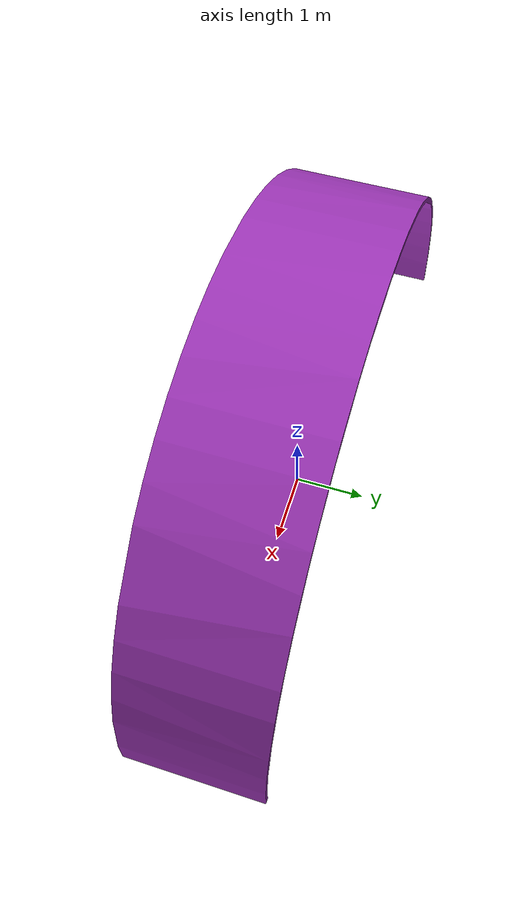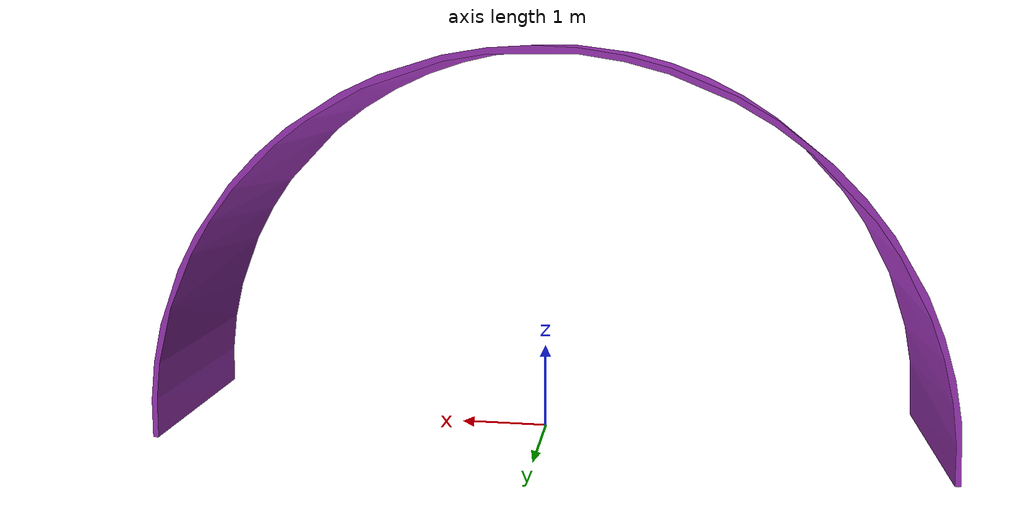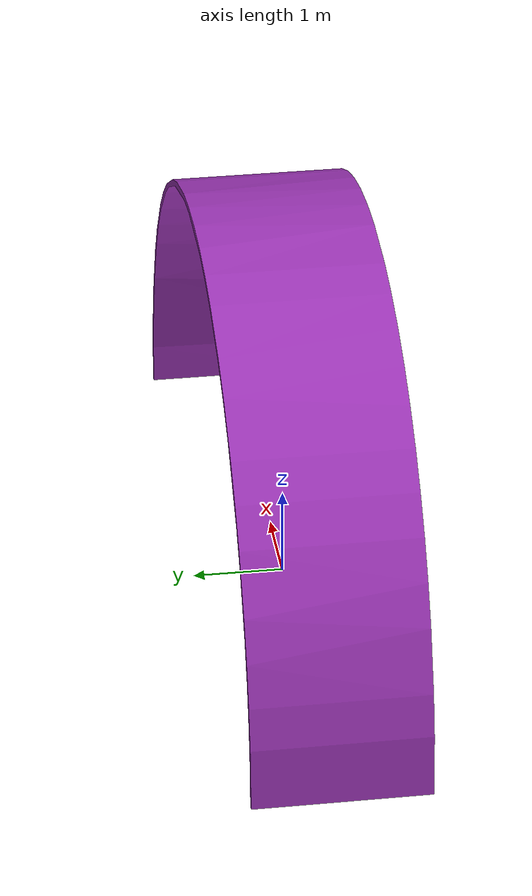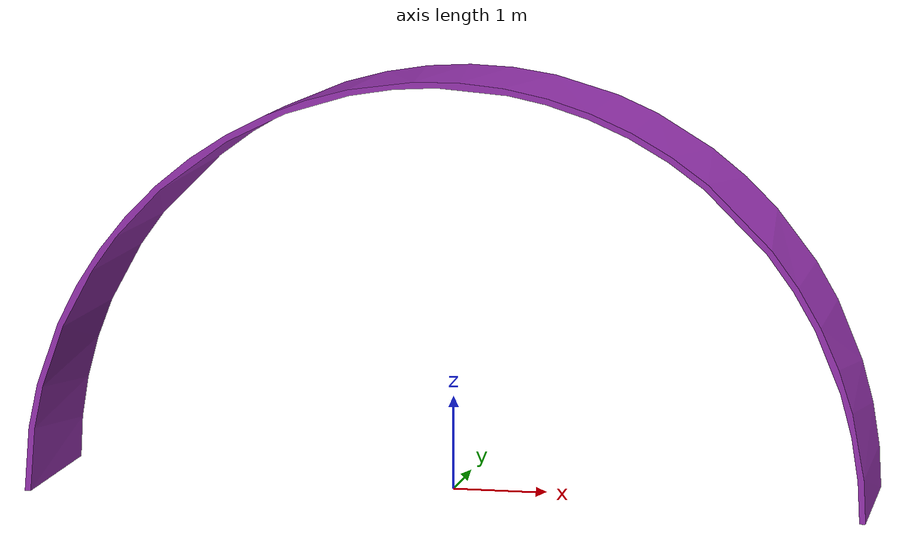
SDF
<?xml version='1.0'?>
<sdf version='1.6'>
  <model name='fpv_gate_purple'>
    <link name='link'>
      <pose frame=''>0 0 0 0 0 0</pose>
      <inertial>
        <mass>0.3</mass>
        <inertia>
          <ixx>0.166667</ixx>
          <ixy>0</ixy>
          <ixz>0</ixz>
          <iyy>0.166667</iyy>
          <iyz>0</iyz>
          <izz>0.166667</izz>
        </inertia>
        <pose frame=''>0 0 0 0 0 0</pose>
      </inertial>
      <gravity>1</gravity>
      <self_collide>0</self_collide>
      <kinematic>0</kinematic>
      <visual name='visual'>
        <pose frame=''>0 0 0 0 0 0</pose>
        <geometry>
          <mesh>
            <uri>model://fpv_gate/fpv_gate.stl</uri>
            <scale>0.006346939 0.006346939 0.006346939</scale>
          </mesh>
        </geometry>
        <material>
          <lighting>1</lighting>
          <script>
            <uri>file://media/materials/scripts/gazebo.material</uri>
            <name>Gazebo/Purple</name>
          </script>
          <ambient>1.0 0.0 1.0 1</ambient>
          <diffuse>1.0 0.0 1.0 1</diffuse>
          <specular>1 1 1 0</specular>
          <emissive>0 0 0 1</emissive>
          <shader type='vertex'>
            <normal_map>__default__</normal_map>
          </shader>
        </material>
        <cast_shadows>1</cast_shadows>
        <transparency>0</transparency>
      </visual>
      <collision name='collision'>
        <laser_retro>0</laser_retro>
        <max_contacts>10</max_contacts>
        <pose frame=''>0 0 0 0 0 0</pose>
        <geometry>
          <mesh>
            <uri>model://fpv_gate/fpv_gate.stl</uri>
            <scale>0.006346939 0.006346939 0.006346939</scale>
          </mesh>
        </geometry>
      </collision>
    </link>
    <static>1</static>
    <allow_auto_disable>1</allow_auto_disable>
  </model>
</sdf>
